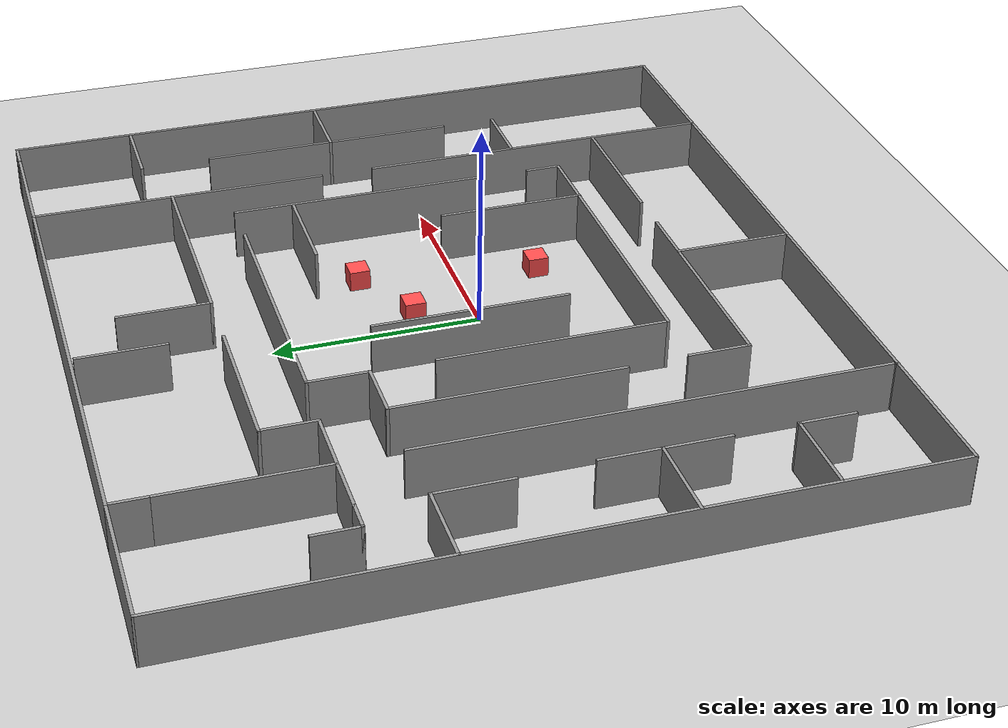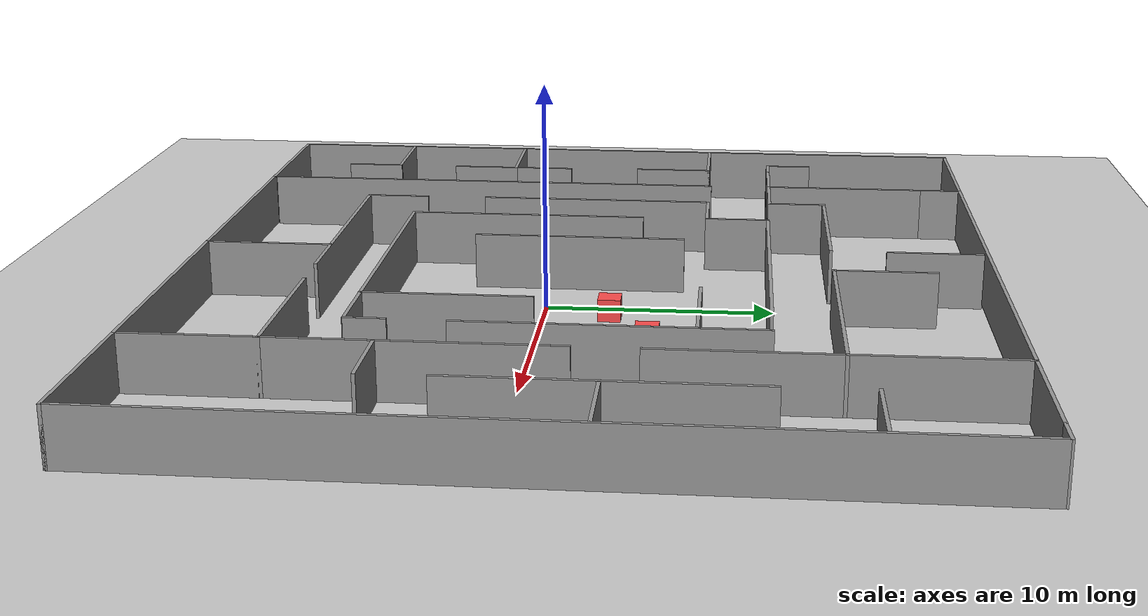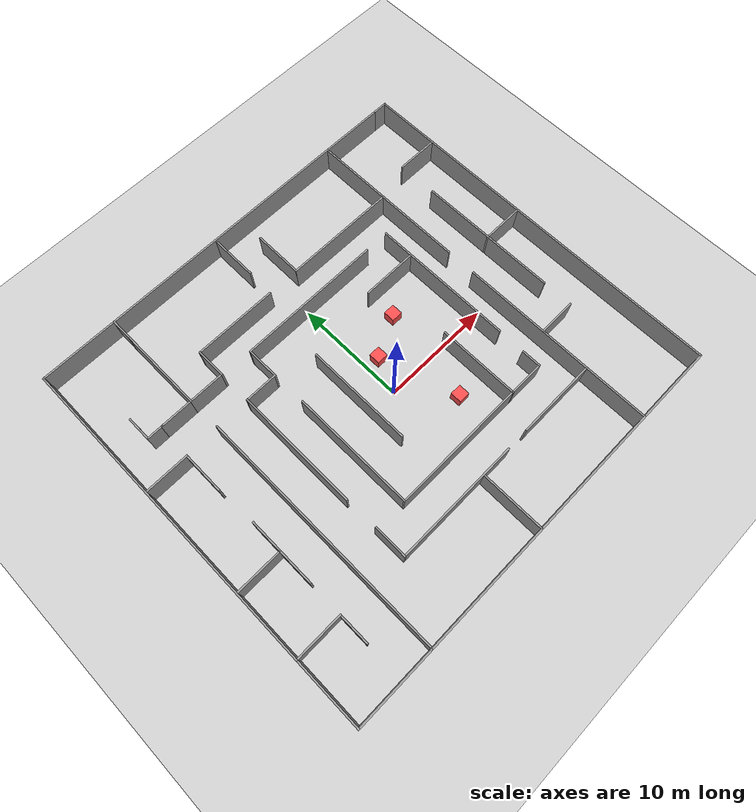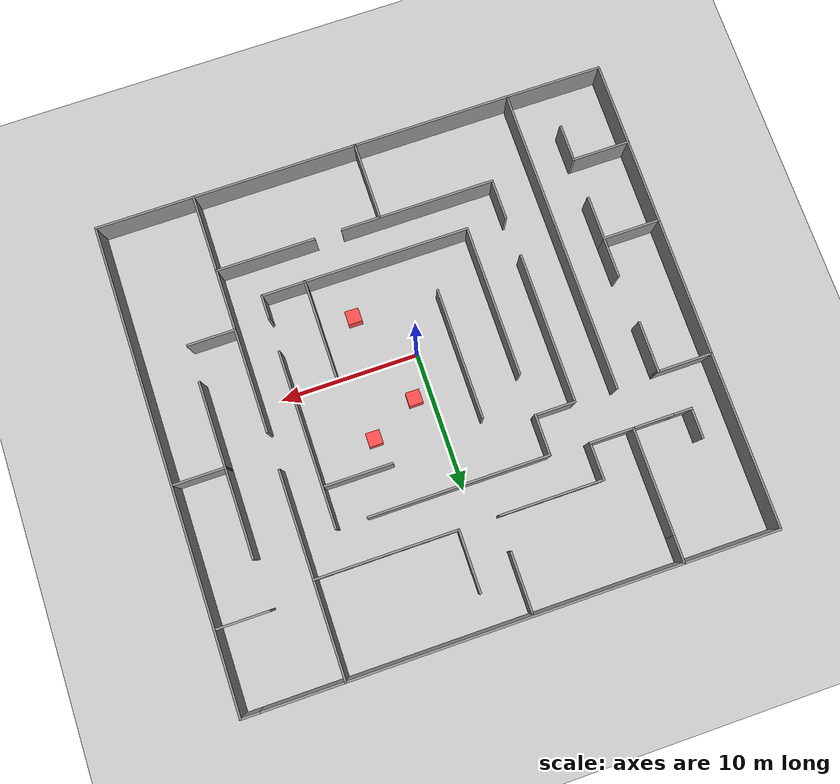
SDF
<sdf version="1.6">
 <world name="default">
  <light name="sun" type="directional">
   <pose>0 0 10 0 -0 0</pose>
   <diffuse>0.8 0.8 0.8 1</diffuse>
   <specular>0.2 0.2 0.2 1</specular>
   <attenuation>
    <range>1000</range>
    <constant>0.9</constant>
    <linear>0.01</linear>
    <quadratic>0.001</quadratic>
   </attenuation>
   <direction>-0.5 0.1 -0.9</direction>
  </light>
  <model name="ground_plane">
   <static>1</static>
   <link name="link">
    <collision name="collision">
     <geometry><plane><normal>0 0 1</normal><size>100 100</size></plane></geometry>
     <surface>
      <contact><collide_bitmask>65535</collide_bitmask></contact>
      <friction><ode><mu>100</mu><mu2>50</mu2></ode></friction>
     </surface>
    </collision>
    <visual name="visual">
     <cast_shadows>0</cast_shadows>
     <geometry><plane><normal>0 0 1</normal><size>100 100</size></plane></geometry>
     <material>
      <script><uri>file://media/materials/scripts/gazebo.material</uri><name>Gazebo/Grey</name></script>
     </material>
    </visual>
   </link>
  </model>
  <gravity>0 0 -9.8</gravity>
  <magnetic_field>6e-06 2.3e-05 -4.2e-05</magnetic_field>
  <atmosphere type="adiabatic"/>
  <physics name="default_physics" default="0" type="ode">
   <max_step_size>0.001</max_step_size>
   <real_time_factor>1</real_time_factor>
   <real_time_update_rate>1000</real_time_update_rate>
  </physics>
  <scene><ambient>0.4 0.4 0.4 1</ambient><background>0.7 0.7 0.7 1</background><shadows>1</shadows></scene>
  <spherical_coordinates>
   <surface_model>EARTH_WGS84</surface_model>
   <latitude_deg>0</latitude_deg>
   <longitude_deg>0</longitude_deg>
   <elevation>0</elevation>
   <heading_deg>0</heading_deg>
  </spherical_coordinates>
  <model name="demo">
   <pose>-0.267833 1.98478 0 0 -0 1.57088</pose>
   <link name="Wall_10">
    <collision name="Wall_10_Collision">
     <geometry><box><size>12.75 0.15 2.5</size></box></geometry>
     <pose>0 0 1.25 0 -0 0</pose>
    </collision>
    <visual name="Wall_10_Visual">
     <pose>0 0 1.25 0 -0 0</pose>
     <geometry><box><size>12.75 0.15 2.5</size></box></geometry>
     <material>
      <script><uri>file://media/materials/scripts/gazebo.material</uri><name>Gazebo/Grey</name></script>
      <ambient>1 1 1 1</ambient>
     </material>
     <meta><layer>0</layer></meta>
    </visual>
    <pose>1.48611 -9.23618 0 0 -0 3.14159</pose>
   </link>
   <link name="Wall_100">
    <collision name="Wall_100_Collision">
     <geometry><box><size>7 0.15 2.5</size></box></geometry>
     <pose>0 0 1.25 0 -0 0</pose>
    </collision>
    <visual name="Wall_100_Visual">
     <pose>0 0 1.25 0 -0 0</pose>
     <geometry><box><size>7 0.15 2.5</size></box></geometry>
     <material>
      <script><uri>file://media/materials/scripts/gazebo.material</uri><name>Gazebo/Grey</name></script>
      <ambient>1 1 1 1</ambient>
     </material>
     <meta><layer>0</layer></meta>
    </visual>
    <pose>17.3507 15.234 0 0 -0 1.5708</pose>
   </link>
   <link name="Wall_101">
    <collision name="Wall_101_Collision">
     <geometry><box><size>34.8299 0.15 2.5</size></box></geometry>
     <pose>0 0 1.25 0 -0 0</pose>
    </collision>
    <visual name="Wall_101_Visual">
     <pose>0 0 1.25 0 -0 0</pose>
     <geometry><box><size>34.8299 0.15 2.5</size></box></geometry>
     <material>
      <script><uri>file://media/materials/scripts/gazebo.material</uri><name>Gazebo/Grey</name></script>
      <ambient>1 1 1 1</ambient>
     </material>
     <meta><layer>0</layer></meta>
    </visual>
    <pose>0.010798 18.6989 0 0 -0 3.13929</pose>
   </link>
   <link name="Wall_104">
    <collision name="Wall_104_Collision">
     <geometry><box><size>7.07983 0.15 2.5</size></box></geometry>
     <pose>0 0 1.25 0 -0 0</pose>
    </collision>
    <visual name="Wall_104_Visual">
     <pose>0 0 1.25 0 -0 0</pose>
     <geometry><box><size>7.07983 0.15 2.5</size></box></geometry>
     <material>
      <script><uri>file://media/materials/scripts/gazebo.material</uri><name>Gazebo/Grey</name></script>
      <ambient>1 1 1 1</ambient>
     </material>
     <meta><layer>0</layer></meta>
    </visual>
    <pose>-17.3392 15.2739 0 0 -0 1.56788</pose>
   </link>
   <link name="Wall_107">
    <collision name="Wall_107_Collision">
     <geometry><box><size>22.25 0.15 2.5</size></box></geometry>
     <pose>0 0 1.25 0 -0 0</pose>
    </collision>
    <visual name="Wall_107_Visual">
     <pose>0 0 1.25 0 -0 0</pose>
     <geometry><box><size>22.25 0.15 2.5</size></box></geometry>
     <material>
      <script><uri>file://media/materials/scripts/gazebo.material</uri><name>Gazebo/Grey</name></script>
      <ambient>1 1 1 1</ambient>
     </material>
     <meta><layer>0</layer></meta>
    </visual>
    <pose>-6.08605 11.73 0 0 -0 3.14159</pose>
   </link>
   <link name="Wall_111">
    <collision name="Wall_111_Collision">
     <geometry><box><size>4.25 0.15 2.5</size></box></geometry>
     <pose>0 0 1.25 0 -0 0</pose>
    </collision>
    <visual name="Wall_111_Visual">
     <pose>0 0 1.25 0 -0 0</pose>
     <geometry><box><size>4.25 0.15 2.5</size></box></geometry>
     <material>
      <script><uri>file://media/materials/scripts/gazebo.material</uri><name>Gazebo/Grey</name></script>
      <ambient>1 1 1 1</ambient>
     </material>
     <meta><layer>0</layer></meta>
    </visual>
    <pose>-11.3492 16.6603 0 0 -0 -1.5708</pose>
   </link>
   <link name="Wall_112">
    <collision name="Wall_112_Collision">
     <geometry><box><size>2.75 0.15 2.5</size></box></geometry>
     <pose>0 0 1.25 0 -0 0</pose>
    </collision>
    <visual name="Wall_112_Visual">
     <pose>0 0 1.25 0 -0 0</pose>
     <geometry><box><size>2.75 0.15 2.5</size></box></geometry>
     <material>
      <script><uri>file://media/materials/scripts/gazebo.material</uri><name>Gazebo/Grey</name></script>
      <ambient>1 1 1 1</ambient>
     </material>
     <meta><layer>0</layer></meta>
    </visual>
    <pose>-12.6492 14.6103 0 0 -0 3.14159</pose>
   </link>
   <link name="Wall_114">
    <collision name="Wall_114_Collision">
     <geometry><box><size>4.25 0.15 2.5</size></box></geometry>
     <pose>0 0 1.25 0 -0 0</pose>
    </collision>
    <visual name="Wall_114_Visual">
     <pose>0 0 1.25 0 -0 0</pose>
     <geometry><box><size>4.25 0.15 2.5</size></box></geometry>
     <material>
      <script><uri>file://media/materials/scripts/gazebo.material</uri><name>Gazebo/Grey</name></script>
      <ambient>1 1 1 1</ambient>
     </material>
     <meta><layer>0</layer></meta>
    </visual>
    <pose>-5.22807 16.6603 0 0 -0 -1.5708</pose>
   </link>
   <link name="Wall_115">
    <collision name="Wall_115_Collision">
     <geometry><box><size>3.25 0.15 2.5</size></box></geometry>
     <pose>0 0 1.25 0 -0 0</pose>
    </collision>
    <visual name="Wall_115_Visual">
     <pose>0 0 1.25 0 -0 0</pose>
     <geometry><box><size>3.25 0.15 2.5</size></box></geometry>
     <material>
      <script><uri>file://media/materials/scripts/gazebo.material</uri><name>Gazebo/Grey</name></script>
      <ambient>1 1 1 1</ambient>
     </material>
     <meta><layer>0</layer></meta>
    </visual>
    <pose>-6.77807 14.6103 0 0 -0 3.14159</pose>
   </link>
   <link name="Wall_117">
    <collision name="Wall_117_Collision">
     <geometry><box><size>3 0.15 2.5</size></box></geometry>
     <pose>0 0 1.25 0 -0 0</pose>
    </collision>
    <visual name="Wall_117_Visual">
     <pose>0 0 1.25 0 -0 0</pose>
     <geometry><box><size>3 0.15 2.5</size></box></geometry>
     <material>
      <script><uri>file://media/materials/scripts/gazebo.material</uri><name>Gazebo/Grey</name></script>
      <ambient>1 1 1 1</ambient>
     </material>
     <meta><layer>0</layer></meta>
    </visual>
    <pose>-3.80307 14.6103 0 0 -0 0</pose>
   </link>
   <link name="Wall_119">
    <collision name="Wall_119_Collision">
     <geometry><box><size>3.75 0.15 2.5</size></box></geometry>
     <pose>0 0 1.25 0 -0 0</pose>
    </collision>
    <visual name="Wall_119_Visual">
     <pose>0 0 1.25 0 -0 0</pose>
     <geometry><box><size>3.75 0.15 2.5</size></box></geometry>
     <material>
      <script><uri>file://media/materials/scripts/gazebo.material</uri><name>Gazebo/Grey</name></script>
      <ambient>1 1 1 1</ambient>
     </material>
     <meta><layer>0</layer></meta>
    </visual>
    <pose>3.00964 14.8055 0 0 -0 0</pose>
   </link>
   <link name="Wall_126">
    <collision name="Wall_126_Collision">
     <geometry><box><size>4 0.15 2.5</size></box></geometry>
     <pose>0 0 1.25 0 -0 0</pose>
    </collision>
    <visual name="Wall_126_Visual">
     <pose>0 0 1.25 0 -0 0</pose>
     <geometry><box><size>4 0.15 2.5</size></box></geometry>
     <material>
      <script><uri>file://media/materials/scripts/gazebo.material</uri><name>Gazebo/Grey</name></script>
      <ambient>1 1 1 1</ambient>
     </material>
     <meta><layer>0</layer></meta>
    </visual>
    <pose>4.80964 16.7305 0 0 -0 1.5708</pose>
   </link>
   <link name="Wall_128">
    <collision name="Wall_128_Collision">
     <geometry><box><size>3 0.15 2.5</size></box></geometry>
     <pose>0 0 1.25 0 -0 0</pose>
    </collision>
    <visual name="Wall_128_Visual">
     <pose>0 0 1.25 0 -0 0</pose>
     <geometry><box><size>3 0.15 2.5</size></box></geometry>
     <material>
      <script><uri>file://media/materials/scripts/gazebo.material</uri><name>Gazebo/Grey</name></script>
      <ambient>1 1 1 1</ambient>
     </material>
     <meta><layer>0</layer></meta>
    </visual>
    <pose>7.9007 13.234 0 0 -0 1.5708</pose>
   </link>
   <link name="Wall_129">
    <collision name="Wall_129_Collision">
     <geometry><box><size>1.5 0.15 2.5</size></box></geometry>
     <pose>0 0 1.25 0 -0 0</pose>
    </collision>
    <visual name="Wall_129_Visual">
     <pose>0 0 1.25 0 -0 0</pose>
     <geometry><box><size>1.5 0.15 2.5</size></box></geometry>
     <material>
      <script><uri>file://media/materials/scripts/gazebo.material</uri><name>Gazebo/Grey</name></script>
      <ambient>1 1 1 1</ambient>
     </material>
     <meta><layer>0</layer></meta>
    </visual>
    <pose>7.9007 15.334 0 0 -0 1.5708</pose>
   </link>
   <link name="Wall_130">
    <collision name="Wall_130_Collision">
     <geometry><box><size>2.25 0.15 2.5</size></box></geometry>
     <pose>0 0 1.25 0 -0 0</pose>
    </collision>
    <visual name="Wall_130_Visual">
     <pose>0 0 1.25 0 -0 0</pose>
     <geometry><box><size>2.25 0.15 2.5</size></box></geometry>
     <material>
      <script><uri>file://media/materials/scripts/gazebo.material</uri><name>Gazebo/Grey</name></script>
      <ambient>1 1 1 1</ambient>
     </material>
     <meta><layer>0</layer></meta>
    </visual>
    <pose>8.9507 16.009 0 0 -0 0</pose>
   </link>
   <link name="Wall_14">
    <collision name="Wall_14_Collision">
     <geometry><box><size>1.75 0.15 2.5</size></box></geometry>
     <pose>0 0 1.25 0 -0 0</pose>
    </collision>
    <visual name="Wall_14_Visual">
     <pose>0 0 1.25 0 -0 0</pose>
     <geometry><box><size>1.75 0.15 2.5</size></box></geometry>
     <material>
      <script><uri>file://media/materials/scripts/gazebo.material</uri><name>Gazebo/Grey</name></script>
      <ambient>1 1 1 1</ambient>
     </material>
     <meta><layer>0</layer></meta>
    </visual>
    <pose>-8.13766 -9.19892 0 0 -0 3.14159</pose>
   </link>
   <link name="Wall_16">
    <collision name="Wall_16_Collision">
     <geometry><box><size>3.25937 0.15 2.5</size></box></geometry>
     <pose>0 0 1.25 0 -0 0</pose>
    </collision>
    <visual name="Wall_16_Visual">
     <pose>0 0 1.25 0 -0 0</pose>
     <geometry><box><size>3.25937 0.15 2.5</size></box></geometry>
     <material>
      <script><uri>file://media/materials/scripts/gazebo.material</uri><name>Gazebo/Grey</name></script>
      <ambient>1 1 1 1</ambient>
     </material>
     <meta><layer>0</layer></meta>
    </visual>
    <pose>-8.97051 -7.63336 0 0 -0 -1.5708</pose>
   </link>
   <link name="Wall_18">
    <collision name="Wall_18_Collision">
     <geometry><box><size>9.5 0.15 2.5</size></box></geometry>
     <pose>0 0 1.25 0 -0 0</pose>
    </collision>
    <visual name="Wall_18_Visual">
     <pose>0 0 1.25 0 -0 0</pose>
     <geometry><box><size>9.5 0.15 2.5</size></box></geometry>
     <material>
      <script><uri>file://media/materials/scripts/gazebo.material</uri><name>Gazebo/Grey</name></script>
      <ambient>1 1 1 1</ambient>
     </material>
     <meta><layer>0</layer></meta>
    </visual>
    <pose>-0.74848 2.42372 0 0 -0 0</pose>
   </link>
   <link name="Wall_20">
    <collision name="Wall_20_Collision">
     <geometry><box><size>7.25 0.15 2.5</size></box></geometry>
     <pose>0 0 1.25 0 -0 0</pose>
    </collision>
    <visual name="Wall_20_Visual">
     <pose>0 0 1.25 0 -0 0</pose>
     <geometry><box><size>7.25 0.15 2.5</size></box></geometry>
     <material>
      <script><uri>file://media/materials/scripts/gazebo.material</uri><name>Gazebo/Grey</name></script>
      <ambient>1 1 1 1</ambient>
     </material>
     <meta><layer>0</layer></meta>
    </visual>
    <pose>-5.44023 -6.0788 0 0 -0 0</pose>
   </link>
   <link name="Wall_22">
    <collision name="Wall_22_Collision">
     <geometry><box><size>3 0.15 2.5</size></box></geometry>
     <pose>0 0 1.25 0 -0 0</pose>
    </collision>
    <visual name="Wall_22_Visual">
     <pose>0 0 1.25 0 -0 0</pose>
     <geometry><box><size>3 0.15 2.5</size></box></geometry>
     <material>
      <script><uri>file://media/materials/scripts/gazebo.material</uri><name>Gazebo/Grey</name></script>
      <ambient>1 1 1 1</ambient>
     </material>
     <meta><layer>0</layer></meta>
    </visual>
    <pose>4.93611 7.28882 0 0 -0 1.5708</pose>
   </link>
   <link name="Wall_23">
    <collision name="Wall_23_Collision">
     <geometry><box><size>11 0.15 2.5</size></box></geometry>
     <pose>0 0 1.25 0 -0 0</pose>
    </collision>
    <visual name="Wall_23_Visual">
     <pose>0 0 1.25 0 -0 0</pose>
     <geometry><box><size>11 0.15 2.5</size></box></geometry>
     <material>
      <script><uri>file://media/materials/scripts/gazebo.material</uri><name>Gazebo/Grey</name></script>
      <ambient>1 1 1 1</ambient>
     </material>
     <meta><layer>0</layer></meta>
    </visual>
    <pose>-0.488893 8.71382 0 0 -0 3.14159</pose>
   </link>
   <link name="Wall_25">
    <collision name="Wall_25_Collision">
     <geometry><box><size>3 0.15 2.5</size></box></geometry>
     <pose>0 0 1.25 0 -0 0</pose>
    </collision>
    <visual name="Wall_25_Visual">
     <pose>0 0 1.25 0 -0 0</pose>
     <geometry><box><size>3 0.15 2.5</size></box></geometry>
     <material>
      <script><uri>file://media/materials/scripts/gazebo.material</uri><name>Gazebo/Grey</name></script>
      <ambient>1 1 1 1</ambient>
     </material>
     <meta><layer>0</layer></meta>
    </visual>
    <pose>-10.2909 8.62897 0 0 -0 3.14159</pose>
   </link>
   <link name="Wall_26">
    <collision name="Wall_26_Collision">
     <geometry><box><size>11.25 0.15 2.5</size></box></geometry>
     <pose>0 0 1.25 0 -0 0</pose>
    </collision>
    <visual name="Wall_26_Visual">
     <pose>0 0 1.25 0 -0 0</pose>
     <geometry><box><size>11.25 0.15 2.5</size></box></geometry>
     <material>
      <script><uri>file://media/materials/scripts/gazebo.material</uri><name>Gazebo/Grey</name></script>
      <ambient>1 1 1 1</ambient>
     </material>
     <meta><layer>0</layer></meta>
    </visual>
    <pose>-11.7159 3.07897 0 0 -0 -1.5708</pose>
   </link>
   <link name="Wall_28">
    <collision name="Wall_28_Collision">
     <geometry><box><size>7.25 0.15 2.5</size></box></geometry>
     <pose>0 0 1.25 0 -0 0</pose>
    </collision>
    <visual name="Wall_28_Visual">
     <pose>0 0 1.25 0 -0 0</pose>
     <geometry><box><size>7.25 0.15 2.5</size></box></geometry>
     <material>
      <script><uri>file://media/materials/scripts/gazebo.material</uri><name>Gazebo/Grey</name></script>
      <ambient>1 1 1 1</ambient>
     </material>
     <meta><layer>0</layer></meta>
    </visual>
    <pose>-11.6993 -8.09105 0 0 -0 -1.5708</pose>
   </link>
   <link name="Wall_31">
    <collision name="Wall_31_Collision">
     <geometry><box><size>5.75 0.15 2.5</size></box></geometry>
     <pose>0 0 1.25 0 -0 0</pose>
    </collision>
    <visual name="Wall_31_Visual">
     <pose>0 0 1.25 0 -0 0</pose>
     <geometry><box><size>5.75 0.15 2.5</size></box></geometry>
     <material>
      <script><uri>file://media/materials/scripts/gazebo.material</uri><name>Gazebo/Grey</name></script>
      <ambient>1 1 1 1</ambient>
     </material>
     <meta><layer>0</layer></meta>
    </visual>
    <pose>-14.5507 0.301111 0 0 -0 3.14159</pose>
   </link>
   <link name="Wall_32">
    <collision name="Wall_32_Collision">
     <geometry><box><size>12.09 0.15 2.5</size></box></geometry>
     <pose>0 0 1.25 0 -0 0</pose>
    </collision>
    <visual name="Wall_32_Visual">
     <pose>0 0 1.25 0 -0 0</pose>
     <geometry><box><size>12.09 0.15 2.5</size></box></geometry>
     <material>
      <script><uri>file://media/materials/scripts/gazebo.material</uri><name>Gazebo/Grey</name></script>
      <ambient>1 1 1 1</ambient>
     </material>
     <meta><layer>0</layer></meta>
    </visual>
    <pose>-17.3507 -5.66889 0 0 -0 -1.5708</pose>
   </link>
   <link name="Wall_33">
    <collision name="Wall_33_Collision">
     <geometry><box><size>5.80211 0.15 2.5</size></box></geometry>
     <pose>0 0 1.25 0 -0 0</pose>
    </collision>
    <visual name="Wall_33_Visual">
     <pose>0 0 1.25 0 -0 0</pose>
     <geometry><box><size>5.80211 0.15 2.5</size></box></geometry>
     <material>
      <script><uri>file://media/materials/scripts/gazebo.material</uri><name>Gazebo/Grey</name></script>
      <ambient>1 1 1 1</ambient>
     </material>
     <meta><layer>0</layer></meta>
    </visual>
    <pose>-14.525 -11.64 0 0 -0 -0.000382</pose>
   </link>
   <link name="Wall_35">
    <collision name="Wall_35_Collision">
     <geometry><box><size>5 0.15 2.5</size></box></geometry>
     <pose>0 0 1.25 0 -0 0</pose>
    </collision>
    <visual name="Wall_35_Visual">
     <pose>0 0 1.25 0 -0 0</pose>
     <geometry><box><size>5 0.15 2.5</size></box></geometry>
     <material>
      <script><uri>file://media/materials/scripts/gazebo.material</uri><name>Gazebo/Grey</name></script>
      <ambient>1 1 1 1</ambient>
     </material>
     <meta><layer>0</layer></meta>
    </visual>
    <pose>4.90238 -6.74877 0 0 -0 1.5708</pose>
   </link>
   <link name="Wall_37">
    <collision name="Wall_37_Collision">
     <geometry><box><size>13 0.15 2.5</size></box></geometry>
     <pose>0 0 1.25 0 -0 0</pose>
    </collision>
    <visual name="Wall_37_Visual">
     <pose>0 0 1.25 0 -0 0</pose>
     <geometry><box><size>13 0.15 2.5</size></box></geometry>
     <material>
      <script><uri>file://media/materials/scripts/gazebo.material</uri><name>Gazebo/Grey</name></script>
      <ambient>1 1 1 1</ambient>
     </material>
     <meta><layer>0</layer></meta>
    </visual>
    <pose>7.78611 -0.561178 0 0 -0 -1.5708</pose>
   </link>
   <link name="Wall_39">
    <collision name="Wall_39_Collision">
     <geometry><box><size>7.75 0.15 2.5</size></box></geometry>
     <pose>0 0 1.25 0 -0 0</pose>
    </collision>
    <visual name="Wall_39_Visual">
     <pose>0 0 1.25 0 -0 0</pose>
     <geometry><box><size>7.75 0.15 2.5</size></box></geometry>
     <material>
      <script><uri>file://media/materials/scripts/gazebo.material</uri><name>Gazebo/Grey</name></script>
      <ambient>1 1 1 1</ambient>
     </material>
     <meta><layer>0</layer></meta>
    </visual>
    <pose>6.7007 -11.641 0 0 -0 0</pose>
   </link>
   <link name="Wall_4">
    <collision name="Wall_4_Collision">
     <geometry><box><size>12.0399 0.15 2.5</size></box></geometry>
     <pose>0 0 1.25 0 -0 0</pose>
    </collision>
    <visual name="Wall_4_Visual">
     <pose>0 0 1.25 0 -0 0</pose>
     <geometry><box><size>12.0399 0.15 2.5</size></box></geometry>
     <material>
      <script><uri>file://media/materials/scripts/gazebo.material</uri><name>Gazebo/Grey</name></script>
      <ambient>1 1 1 1</ambient>
     </material>
     <meta><layer>0</layer></meta>
    </visual>
    <pose>-8.97051 -0.133858 0 0 -0 1.5708</pose>
   </link>
   <link name="Wall_41">
    <collision name="Wall_41_Collision">
     <geometry><box><size>2.75 0.15 2.5</size></box></geometry>
     <pose>0 0 1.25 0 -0 0</pose>
    </collision>
    <visual name="Wall_41_Visual">
     <pose>0 0 1.25 0 -0 0</pose>
     <geometry><box><size>2.75 0.15 2.5</size></box></geometry>
     <material>
      <script><uri>file://media/materials/scripts/gazebo.material</uri><name>Gazebo/Grey</name></script>
      <ambient>1 1 1 1</ambient>
     </material>
     <meta><layer>0</layer></meta>
    </visual>
    <pose>9.2007 8.70895 0 0 -0 3.14159</pose>
   </link>
   <link name="Wall_42">
    <collision name="Wall_42_Collision">
     <geometry><box><size>3.25 0.15 2.5</size></box></geometry>
     <pose>0 0 1.25 0 -0 0</pose>
    </collision>
    <visual name="Wall_42_Visual">
     <pose>0 0 1.25 0 -0 0</pose>
     <geometry><box><size>3.25 0.15 2.5</size></box></geometry>
     <material>
      <script><uri>file://media/materials/scripts/gazebo.material</uri><name>Gazebo/Grey</name></script>
      <ambient>1 1 1 1</ambient>
     </material>
     <meta><layer>0</layer></meta>
    </visual>
    <pose>7.9007 10.259 0 0 -0 1.5708</pose>
   </link>
   <link name="Wall_46">
    <collision name="Wall_46_Collision">
     <geometry><box><size>11.6583 0.15 2.5</size></box></geometry>
     <pose>0 0 1.25 0 -0 0</pose>
    </collision>
    <visual name="Wall_46_Visual">
     <pose>0 0 1.25 0 -0 0</pose>
     <geometry><box><size>11.6583 0.15 2.5</size></box></geometry>
     <material>
      <script><uri>file://media/materials/scripts/gazebo.material</uri><name>Gazebo/Grey</name></script>
      <ambient>1 1 1 1</ambient>
     </material>
     <meta><layer>0</layer></meta>
    </visual>
    <pose>-17.35 6.05503 0 0 -0 1.57068</pose>
   </link>
   <link name="Wall_48">
    <collision name="Wall_48_Collision">
     <geometry><box><size>10.25 0.15 2.5</size></box></geometry>
     <pose>0 0 1.25 0 -0 0</pose>
    </collision>
    <visual name="Wall_48_Visual">
     <pose>0 0 1.25 0 -0 0</pose>
     <geometry><box><size>10.25 0.15 2.5</size></box></geometry>
     <material>
      <script><uri>file://media/materials/scripts/gazebo.material</uri><name>Gazebo/Grey</name></script>
      <ambient>1 1 1 1</ambient>
     </material>
     <meta><layer>0</layer></meta>
    </visual>
    <pose>10.5007 -6.59105 0 0 -0 1.5708</pose>
   </link>
   <link name="Wall_5">
    <collision name="Wall_5_Collision">
     <geometry><box><size>11 0.15 2.5</size></box></geometry>
     <pose>0 0 1.25 0 -0 0</pose>
    </collision>
    <visual name="Wall_5_Visual">
     <pose>0 0 1.25 0 -0 0</pose>
     <geometry><box><size>11 0.15 2.5</size></box></geometry>
     <material>
      <script><uri>file://media/materials/scripts/gazebo.material</uri><name>Gazebo/Grey</name></script>
      <ambient>1 1 1 1</ambient>
     </material>
     <meta><layer>0</layer></meta>
    </visual>
    <pose>-3.54551 5.81108 0 0 -0 0</pose>
   </link>
   <link name="Wall_50">
    <collision name="Wall_50_Collision">
     <geometry><box><size>7.5 0.15 2.5</size></box></geometry>
     <pose>0 0 1.25 0 -0 0</pose>
    </collision>
    <visual name="Wall_50_Visual">
     <pose>0 0 1.25 0 -0 0</pose>
     <geometry><box><size>7.5 0.15 2.5</size></box></geometry>
     <material>
      <script><uri>file://media/materials/scripts/gazebo.material</uri><name>Gazebo/Grey</name></script>
      <ambient>1 1 1 1</ambient>
     </material>
     <meta><layer>0</layer></meta>
    </visual>
    <pose>10.5007 5.03395 0 0 -0 -1.5708</pose>
   </link>
   <link name="Wall_53">
    <collision name="Wall_53_Collision">
     <geometry><box><size>7.75 0.15 2.5</size></box></geometry>
     <pose>0 0 1.25 0 -0 0</pose>
    </collision>
    <visual name="Wall_53_Visual">
     <pose>0 0 1.25 0 -0 0</pose>
     <geometry><box><size>7.75 0.15 2.5</size></box></geometry>
     <material>
      <script><uri>file://media/materials/scripts/gazebo.material</uri><name>Gazebo/Grey</name></script>
      <ambient>1 1 1 1</ambient>
     </material>
     <meta><layer>0</layer></meta>
    </visual>
    <pose>11.7007 11.809 0 0 -0 0</pose>
   </link>
   <link name="Wall_56">
    <collision name="Wall_56_Collision">
     <geometry><box><size>2 0.15 2.5</size></box></geometry>
     <pose>0 0 1.25 0 -0 0</pose>
    </collision>
    <visual name="Wall_56_Visual">
     <pose>0 0 1.25 0 -0 0</pose>
     <geometry><box><size>2 0.15 2.5</size></box></geometry>
     <material>
      <script><uri>file://media/materials/scripts/gazebo.material</uri><name>Gazebo/Grey</name></script>
      <ambient>1 1 1 1</ambient>
     </material>
     <meta><layer>0</layer></meta>
    </visual>
    <pose>16.4257 11.809 0 0 -0 0</pose>
   </link>
   <link name="Wall_57">
    <collision name="Wall_57_Collision">
     <geometry><box><size>23.6 0.15 2.5</size></box></geometry>
     <pose>0 0 1.25 0 -0 0</pose>
    </collision>
    <visual name="Wall_57_Visual">
     <pose>0 0 1.25 0 -0 0</pose>
     <geometry><box><size>23.6 0.15 2.5</size></box></geometry>
     <material>
      <script><uri>file://media/materials/scripts/gazebo.material</uri><name>Gazebo/Grey</name></script>
      <ambient>1 1 1 1</ambient>
     </material>
     <meta><layer>0</layer></meta>
    </visual>
    <pose>17.3507 0.083953 0 0 -0 -1.5708</pose>
   </link>
   <link name="Wall_58">
    <collision name="Wall_58_Collision">
     <geometry><box><size>7.00073 0.15 2.5</size></box></geometry>
     <pose>0 0 1.25 0 -0 0</pose>
    </collision>
    <visual name="Wall_58_Visual">
     <pose>0 0 1.25 0 -0 0</pose>
     <geometry><box><size>7.00073 0.15 2.5</size></box></geometry>
     <material>
      <script><uri>file://media/materials/scripts/gazebo.material</uri><name>Gazebo/Grey</name></script>
      <ambient>1 1 1 1</ambient>
     </material>
     <meta><layer>0</layer></meta>
    </visual>
    <pose>13.9257 -11.641 0 0 -0 3.14159</pose>
   </link>
   <link name="Wall_60">
    <collision name="Wall_60_Collision">
     <geometry><box><size>4.5 0.15 2.5</size></box></geometry>
     <pose>0 0 1.25 0 -0 0</pose>
    </collision>
    <visual name="Wall_60_Visual">
     <pose>0 0 1.25 0 -0 0</pose>
     <geometry><box><size>4.5 0.15 2.5</size></box></geometry>
     <material>
      <script><uri>file://media/materials/scripts/gazebo.material</uri><name>Gazebo/Grey</name></script>
      <ambient>1 1 1 1</ambient>
     </material>
     <meta><layer>0</layer></meta>
    </visual>
    <pose>12.6757 -1.54105 0 0 -0 0</pose>
   </link>
   <link name="Wall_65">
    <collision name="Wall_65_Collision">
     <geometry><box><size>4.25 0.15 2.5</size></box></geometry>
     <pose>0 0 1.25 0 -0 0</pose>
    </collision>
    <visual name="Wall_65_Visual">
     <pose>0 0 1.25 0 -0 0</pose>
     <geometry><box><size>4.25 0.15 2.5</size></box></geometry>
     <material>
      <script><uri>file://media/materials/scripts/gazebo.material</uri><name>Gazebo/Grey</name></script>
      <ambient>1 1 1 1</ambient>
     </material>
     <meta><layer>0</layer></meta>
    </visual>
    <pose>15.0616 1.24113 0 0 -0 3.14159</pose>
   </link>
   <link name="Wall_67">
    <collision name="Wall_67_Collision">
     <geometry><box><size>12 0.15 2.5</size></box></geometry>
     <pose>0 0 1.25 0 -0 0</pose>
    </collision>
    <visual name="Wall_67_Visual">
     <pose>0 0 1.25 0 -0 0</pose>
     <geometry><box><size>12 0.15 2.5</size></box></geometry>
     <material>
      <script><uri>file://media/materials/scripts/gazebo.material</uri><name>Gazebo/Grey</name></script>
      <ambient>1 1 1 1</ambient>
     </material>
     <meta><layer>0</layer></meta>
    </visual>
    <pose>-5.7743 -11.641 0 0 -0 0</pose>
   </link>
   <link name="Wall_69">
    <collision name="Wall_69_Collision">
     <geometry><box><size>6 0.15 2.5</size></box></geometry>
     <pose>0 0 1.25 0 -0 0</pose>
    </collision>
    <visual name="Wall_69_Visual">
     <pose>0 0 1.25 0 -0 0</pose>
     <geometry><box><size>6 0.15 2.5</size></box></geometry>
     <material>
      <script><uri>file://media/materials/scripts/gazebo.material</uri><name>Gazebo/Grey</name></script>
      <ambient>1 1 1 1</ambient>
     </material>
     <meta><layer>0</layer></meta>
    </visual>
    <pose>17.3507 -14.566 0 0 -0 -1.5708</pose>
   </link>
   <link name="Wall_77">
    <collision name="Wall_77_Collision">
     <geometry><box><size>7.25 0.15 2.5</size></box></geometry>
     <pose>0 0 1.25 0 -0 0</pose>
    </collision>
    <visual name="Wall_77_Visual">
     <pose>0 0 1.25 0 -0 0</pose>
     <geometry><box><size>7.25 0.15 2.5</size></box></geometry>
     <material>
      <script><uri>file://media/materials/scripts/gazebo.material</uri><name>Gazebo/Grey</name></script>
      <ambient>1 1 1 1</ambient>
     </material>
     <meta><layer>0</layer></meta>
    </visual>
    <pose>-17.3507 -15.1889 0 0 -0 -1.5708</pose>
   </link>
   <link name="Wall_78">
    <collision name="Wall_78_Collision">
     <geometry><box><size>34.85 0.15 2.5</size></box></geometry>
     <pose>0 0 1.25 0 -0 0</pose>
    </collision>
    <visual name="Wall_78_Visual">
     <pose>0 0 1.25 0 -0 0</pose>
     <geometry><box><size>34.85 0.15 2.5</size></box></geometry>
     <material>
      <script><uri>file://media/materials/scripts/gazebo.material</uri><name>Gazebo/Grey</name></script>
      <ambient>1 1 1 1</ambient>
     </material>
     <meta><layer>0</layer></meta>
    </visual>
    <pose>-0.000659 -18.7389 0 0 -0 0</pose>
   </link>
   <link name="Wall_8">
    <collision name="Wall_8_Collision">
     <geometry><box><size>3 0.15 2.5</size></box></geometry>
     <pose>0 0 1.25 0 -0 0</pose>
    </collision>
    <visual name="Wall_8_Visual">
     <pose>0 0 1.25 0 -0 0</pose>
     <geometry><box><size>3 0.15 2.5</size></box></geometry>
     <material>
      <script><uri>file://media/materials/scripts/gazebo.material</uri><name>Gazebo/Grey</name></script>
      <ambient>1 1 1 1</ambient>
     </material>
     <meta><layer>0</layer></meta>
    </visual>
    <pose>6.36111 5.86382 0 0 -0 0</pose>
   </link>
   <link name="Wall_83">
    <collision name="Wall_83_Collision">
     <geometry><box><size>1.39784 0.15 2.5</size></box></geometry>
     <pose>0 0 1.25 0 -0 0</pose>
    </collision>
    <visual name="Wall_83_Visual">
     <pose>0 0 1.25 0 -0 0</pose>
     <geometry><box><size>1.39784 0.15 2.5</size></box></geometry>
     <material>
      <script><uri>file://media/materials/scripts/gazebo.material</uri><name>Gazebo/Grey</name></script>
      <ambient>1 1 1 1</ambient>
     </material>
     <meta><layer>0</layer></meta>
    </visual>
    <pose>17.35 -18.115 0 0 -0 1.56971</pose>
   </link>
   <link name="Wall_85">
    <collision name="Wall_85_Collision">
     <geometry><box><size>3.75 0.15 2.5</size></box></geometry>
     <pose>0 0 1.25 0 -0 0</pose>
    </collision>
    <visual name="Wall_85_Visual">
     <pose>0 0 1.25 0 -0 0</pose>
     <geometry><box><size>3.75 0.15 2.5</size></box></geometry>
     <material>
      <script><uri>file://media/materials/scripts/gazebo.material</uri><name>Gazebo/Grey</name></script>
      <ambient>1 1 1 1</ambient>
     </material>
     <meta><layer>0</layer></meta>
    </visual>
    <pose>1.56903 -16.8068 0 0 -0 1.5708</pose>
   </link>
   <link name="Wall_86">
    <collision name="Wall_86_Collision">
     <geometry><box><size>6.5 0.15 2.5</size></box></geometry>
     <pose>0 0 1.25 0 -0 0</pose>
    </collision>
    <visual name="Wall_86_Visual">
     <pose>0 0 1.25 0 -0 0</pose>
     <geometry><box><size>6.5 0.15 2.5</size></box></geometry>
     <material>
      <script><uri>file://media/materials/scripts/gazebo.material</uri><name>Gazebo/Grey</name></script>
      <ambient>1 1 1 1</ambient>
     </material>
     <meta><layer>0</layer></meta>
    </visual>
    <pose>4.74403 -15.0068 0 0 -0 0</pose>
   </link>
   <link name="Wall_88">
    <collision name="Wall_88_Collision">
     <geometry><box><size>6.25 0.15 2.5</size></box></geometry>
     <pose>0 0 1.25 0 -0 0</pose>
    </collision>
    <visual name="Wall_88_Visual">
     <pose>0 0 1.25 0 -0 0</pose>
     <geometry><box><size>6.25 0.15 2.5</size></box></geometry>
     <material>
      <script><uri>file://media/materials/scripts/gazebo.material</uri><name>Gazebo/Grey</name></script>
      <ambient>1 1 1 1</ambient>
     </material>
     <meta><layer>0</layer></meta>
    </visual>
    <pose>-1.48097 -15.0068 0 0 -0 3.14159</pose>
   </link>
   <link name="Wall_92">
    <collision name="Wall_92_Collision">
     <geometry><box><size>3.45 0.15 2.5</size></box></geometry>
     <pose>0 0 1.25 0 -0 0</pose>
    </collision>
    <visual name="Wall_92_Visual">
     <pose>0 0 1.25 0 -0 0</pose>
     <geometry><box><size>3.45 0.15 2.5</size></box></geometry>
     <material>
      <script><uri>file://media/materials/scripts/gazebo.material</uri><name>Gazebo/Grey</name></script>
      <ambient>1 1 1 1</ambient>
     </material>
     <meta><layer>0</layer></meta>
    </visual>
    <pose>-7.2673 -13.3717 0 0 -0 -1.5708</pose>
   </link>
   <link name="Wall_95">
    <collision name="Wall_95_Collision">
     <geometry><box><size>3.75 0.15 2.5</size></box></geometry>
     <pose>0 0 1.25 0 -0 0</pose>
    </collision>
    <visual name="Wall_95_Visual">
     <pose>0 0 1.25 0 -0 0</pose>
     <geometry><box><size>3.75 0.15 2.5</size></box></geometry>
     <material>
      <script><uri>file://media/materials/scripts/gazebo.material</uri><name>Gazebo/Grey</name></script>
      <ambient>1 1 1 1</ambient>
     </material>
     <meta><layer>0</layer></meta>
    </visual>
    <pose>11.4676 -16.796 0 0 -0 1.5708</pose>
   </link>
   <static>1</static>
  </model>
  <audio><device>default</device></audio>
  <model name="unit_box">
   <link name="link">
    <inertial>
     <mass>1</mass>
     <inertia>
      <ixx>0.166667</ixx>
      <ixy>0</ixy>
      <ixz>0</ixz>
      <iyy>0.166667</iyy>
      <iyz>0</iyz>
      <izz>0.166667</izz>
     </inertia>
    </inertial>
    <visual name="visual">
     <geometry><box><size>1 1 1</size></box></geometry>
     <material>
      <script><name>Gazebo/Grey</name><uri>file://media/materials/scripts/gazebo.material</uri></script>
      <shader type="vertex"><normal_map>__default__</normal_map></shader>
      <ambient>1 0.3 0.3 1</ambient>
      <diffuse>0.7 0.7 0.7 1</diffuse>
      <specular>0.01 0.01 0.01 1</specular>
      <emissive>0 0 0 1</emissive>
     </material>
    </visual>
    <collision name="collision">
     <geometry><box><size>1 1 1</size></box></geometry>
     <surface>
      <friction>
       <ode><mu>1</mu><mu2>1</mu2><fdir1>0 0 0</fdir1><slip1>0</slip1><slip2>0</slip2></ode>
       <torsional>
        <coefficient>1</coefficient>
        <patch_radius>0</patch_radius>
        <surface_radius>0</surface_radius>
        <use_patch_radius>1</use_patch_radius>
        <ode><slip>0</slip></ode>
       </torsional>
      </friction>
      <bounce><restitution_coefficient>0</restitution_coefficient><threshold>1e+06</threshold></bounce>
      <contact>
       <collide_without_contact>0</collide_without_contact>
       <collide_without_contact_bitmask>1</collide_without_contact_bitmask>
       <collide_bitmask>1</collide_bitmask>
       <ode>
        <soft_cfm>0</soft_cfm>
        <soft_erp>0.2</soft_erp>
        <kp>1e+13</kp>
        <kd>1</kd>
        <max_vel>0.01</max_vel>
        <min_depth>0</min_depth>
       </ode>
       <bullet>
        <split_impulse>1</split_impulse>
        <split_impulse_penetration_threshold>-0.01</split_impulse_penetration_threshold>
        <soft_cfm>0</soft_cfm>
        <soft_erp>0.2</soft_erp>
        <kp>1e+13</kp>
        <kd>1</kd>
       </bullet>
      </contact>
     </surface>
    </collision>
   </link>
   <static>0</static>
   <pose>3.38844 -3.93732 0.499995 0 -1e-05 5e-06</pose>
  </model>
  <model name="unit_box_clone">
   <link name="link">
    <inertial>
     <mass>1</mass>
     <inertia>
      <ixx>0.166667</ixx>
      <ixy>0</ixy>
      <ixz>0</ixz>
      <iyy>0.166667</iyy>
      <iyz>0</iyz>
      <izz>0.166667</izz>
     </inertia>
    </inertial>
    <visual name="visual">
     <geometry><box><size>1 1 1</size></box></geometry>
     <material>
      <script><name>Gazebo/Grey</name><uri>file://media/materials/scripts/gazebo.material</uri></script>
      <shader type="vertex"><normal_map>__default__</normal_map></shader>
      <ambient>1 0.3 0.3 1</ambient>
      <diffuse>0.7 0.7 0.7 1</diffuse>
      <specular>0.01 0.01 0.01 1</specular>
      <emissive>0 0 0 1</emissive>
     </material>
    </visual>
    <collision name="collision">
     <geometry><box><size>1 1 1</size></box></geometry>
     <surface>
      <friction>
       <ode><mu>1</mu><mu2>1</mu2><fdir1>0 0 0</fdir1><slip1>0</slip1><slip2>0</slip2></ode>
       <torsional>
        <coefficient>1</coefficient>
        <patch_radius>0</patch_radius>
        <surface_radius>0</surface_radius>
        <use_patch_radius>1</use_patch_radius>
        <ode><slip>0</slip></ode>
       </torsional>
      </friction>
      <bounce><restitution_coefficient>0</restitution_coefficient><threshold>1e+06</threshold></bounce>
      <contact>
       <collide_without_contact>0</collide_without_contact>
       <collide_without_contact_bitmask>1</collide_without_contact_bitmask>
       <collide_bitmask>1</collide_bitmask>
       <ode>
        <soft_cfm>0</soft_cfm>
        <soft_erp>0.2</soft_erp>
        <kp>1e+13</kp>
        <kd>1</kd>
        <max_vel>0.01</max_vel>
        <min_depth>0</min_depth>
       </ode>
       <bullet>
        <split_impulse>1</split_impulse>
        <split_impulse_penetration_threshold>-0.01</split_impulse_penetration_threshold>
        <soft_cfm>0</soft_cfm>
        <soft_erp>0.2</soft_erp>
        <kp>1e+13</kp>
        <kd>1</kd>
       </bullet>
      </contact>
     </surface>
    </collision>
   </link>
   <static>0</static>
   <pose>4.69318 4.71597 0.499995 0 -1e-05 5e-06</pose>
  </model>
  <model name="unit_box_clone_0">
   <link name="link">
    <inertial>
     <mass>1</mass>
     <inertia>
      <ixx>0.166667</ixx>
      <ixy>0</ixy>
      <ixz>0</ixz>
      <iyy>0.166667</iyy>
      <iyz>0</iyz>
      <izz>0.166667</izz>
     </inertia>
    </inertial>
    <visual name="visual">
     <geometry><box><size>1 1 1</size></box></geometry>
     <material>
      <script><name>Gazebo/Grey</name><uri>file://media/materials/scripts/gazebo.material</uri></script>
      <shader type="vertex"><normal_map>__default__</normal_map></shader>
      <ambient>1 0.3 0.3 1</ambient>
      <diffuse>0.7 0.7 0.7 1</diffuse>
      <specular>0.01 0.01 0.01 1</specular>
      <emissive>0 0 0 1</emissive>
     </material>
    </visual>
    <collision name="collision">
     <geometry><box><size>1 1 1</size></box></geometry>
     <surface>
      <friction>
       <ode><mu>1</mu><mu2>1</mu2><fdir1>0 0 0</fdir1><slip1>0</slip1><slip2>0</slip2></ode>
       <torsional>
        <coefficient>1</coefficient>
        <patch_radius>0</patch_radius>
        <surface_radius>0</surface_radius>
        <use_patch_radius>1</use_patch_radius>
        <ode><slip>0</slip></ode>
       </torsional>
      </friction>
      <bounce><restitution_coefficient>0</restitution_coefficient><threshold>1e+06</threshold></bounce>
      <contact>
       <collide_without_contact>0</collide_without_contact>
       <collide_without_contact_bitmask>1</collide_without_contact_bitmask>
       <collide_bitmask>1</collide_bitmask>
       <ode>
        <soft_cfm>0</soft_cfm>
        <soft_erp>0.2</soft_erp>
        <kp>1e+13</kp>
        <kd>1</kd>
        <max_vel>0.01</max_vel>
        <min_depth>0</min_depth>
       </ode>
       <bullet>
        <split_impulse>1</split_impulse>
        <split_impulse_penetration_threshold>-0.01</split_impulse_penetration_threshold>
        <soft_cfm>0</soft_cfm>
        <soft_erp>0.2</soft_erp>
        <kp>1e+13</kp>
        <kd>1</kd>
       </bullet>
      </contact>
     </surface>
    </collision>
   </link>
   <static>0</static>
   <pose>1.19253 2.91341 0.499995 -1e-05 -0 1e-05</pose>
  </model>
 </world>
</sdf>
